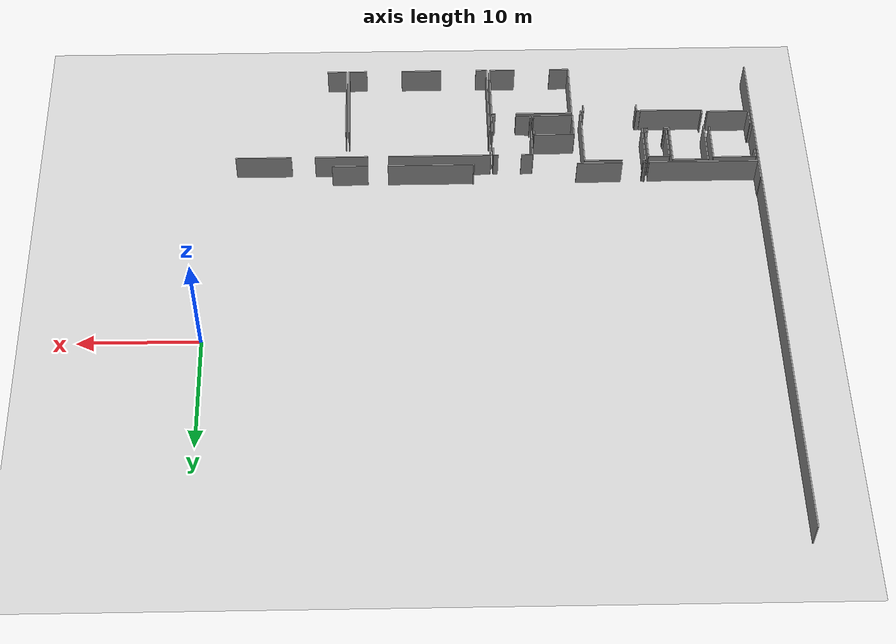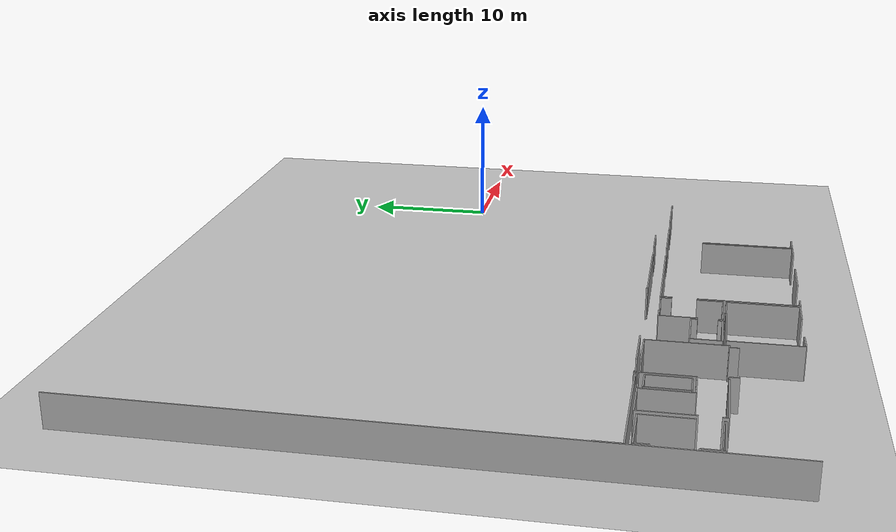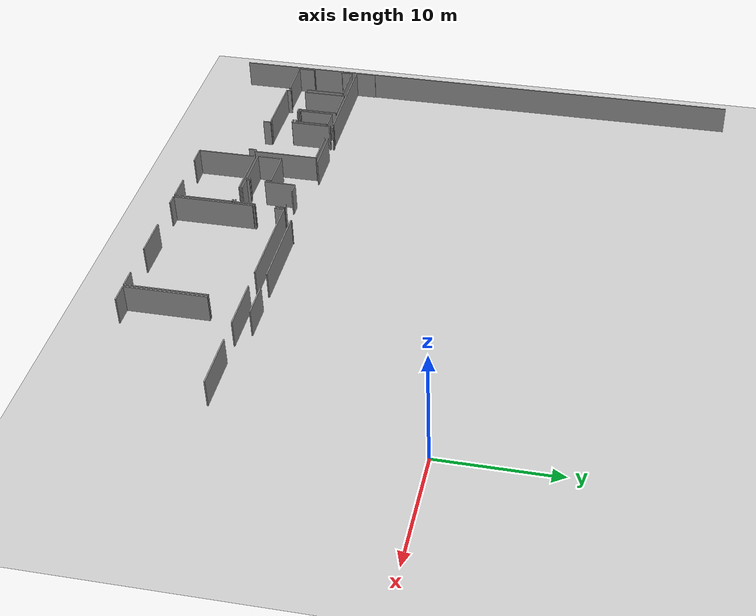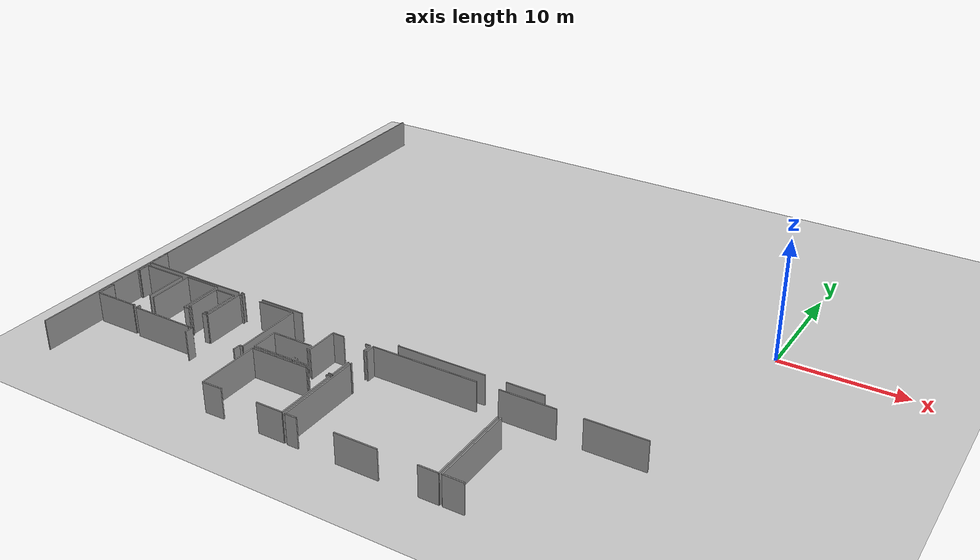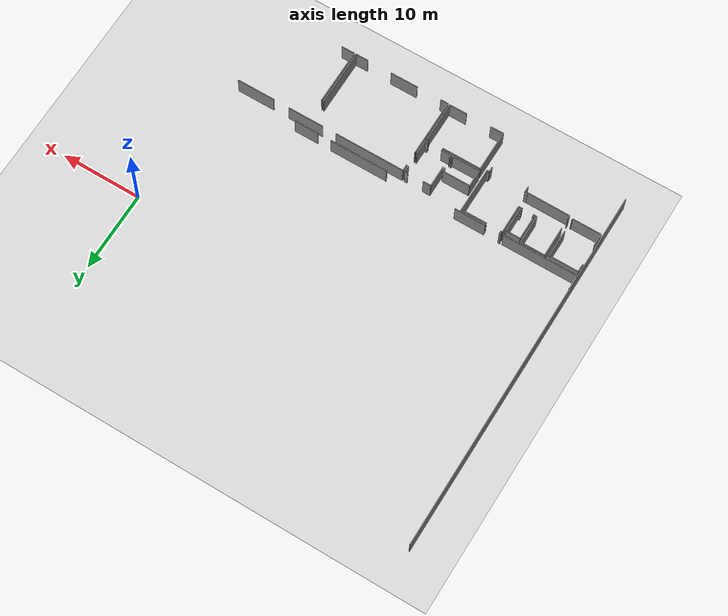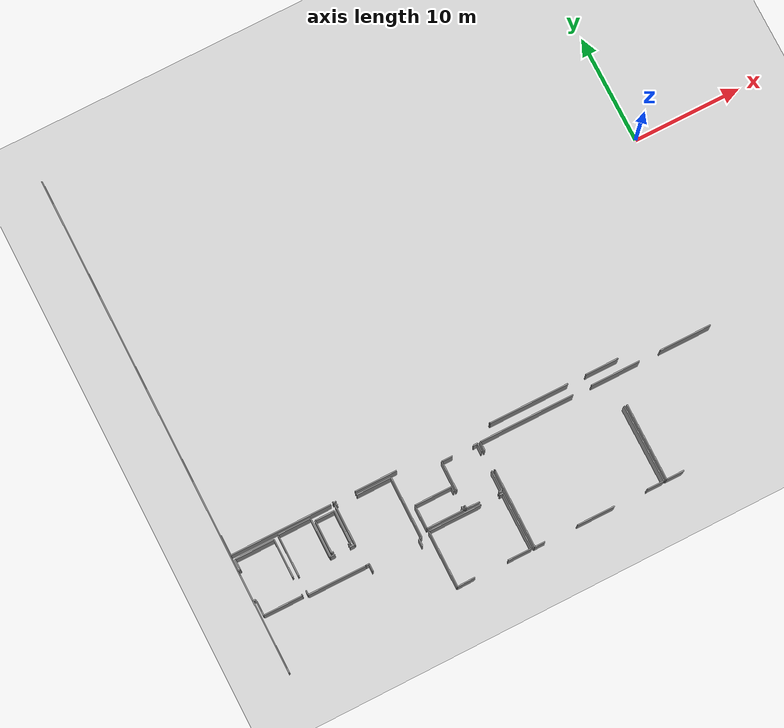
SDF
<sdf version="1.6">
 <world name="default">
  <model name="ground_plane">
   <static>1</static>
   <link name="link">
    <collision name="collision">
     <geometry><plane><normal>0 0 1</normal><size>100 100</size></plane></geometry>
     <surface><friction><ode><mu>100</mu><mu2>50</mu2></ode></friction></surface>
    </collision>
    <visual name="visual">
     <cast_shadows>0</cast_shadows>
     <geometry><plane><normal>0 0 1</normal><size>100 100</size></plane></geometry>
     <material>
      <script><uri>file://media/materials/scripts/gazebo.material</uri><name>Gazebo/Grey</name></script>
     </material>
    </visual>
   </link>
  </model>
  <model name="50045233">
   <static>1</static>
   <link name="Wall_108">
    <collision name="Wall_108_Collision">
     <geometry><box><size>1.83953554773 0.1 2.5</size></box></geometry>
     <pose>0.919767773865 0 1.25 0 0 0</pose>
    </collision>
    <visual name="Wall_108_Visual">
     <pose>0.919767773865 0 1.25 0 0 0</pose>
     <geometry><box><size>1.83953554773 0.1 2.5</size></box></geometry>
     <material>
      <script><uri>file://media/materials/scripts/gazebo.material</uri><name>Gazebo/Grey</name></script>
      <ambient>1 1 1 1</ambient>
     </material>
    </visual>
    <pose>0.0579930839758 -35.56778021 0 0 0 1.57079632679</pose>
   </link>
   <link name="Wall_127">
    <collision name="Wall_127_Collision">
     <geometry><box><size>9.27991145135 0.1 2.5</size></box></geometry>
     <pose>4.63995572567 0 1.25 0 0 0</pose>
    </collision>
    <visual name="Wall_127_Visual">
     <pose>4.63995572567 0 1.25 0 0 0</pose>
     <geometry><box><size>9.27991145135 0.1 2.5</size></box></geometry>
     <material>
      <script><uri>file://media/materials/scripts/gazebo.material</uri><name>Gazebo/Grey</name></script>
      <ambient>1 1 1 1</ambient>
     </material>
    </visual>
    <pose>9.33790171632 -35.5750134831 0 0 0 3.14081319855</pose>
   </link>
   <link name="Wall_128">
    <collision name="Wall_128_Collision">
     <geometry><box><size>0.120681450462 0.1 2.5</size></box></geometry>
     <pose>0.0603407252308 0 1.25 0 0 0</pose>
    </collision>
    <visual name="Wall_128_Visual">
     <pose>0.0603407252308 0 1.25 0 0 0</pose>
     <geometry><box><size>0.120681450462 0.1 2.5</size></box></geometry>
     <material>
      <script><uri>file://media/materials/scripts/gazebo.material</uri><name>Gazebo/Grey</name></script>
      <ambient>1 1 1 1</ambient>
     </material>
    </visual>
    <pose>9.58256400495 -35.5667650138 0 0 0 1.57079632679</pose>
   </link>
   <link name="Wall_131">
    <collision name="Wall_131_Collision">
     <geometry><box><size>3.85698423273 0.1 2.5</size></box></geometry>
     <pose>1.92849211637 0 1.25 0 0 0</pose>
    </collision>
    <visual name="Wall_131_Visual">
     <pose>1.92849211637 0 1.25 0 0 0</pose>
     <geometry><box><size>3.85698423273 0.1 2.5</size></box></geometry>
     <material>
      <script><uri>file://media/materials/scripts/gazebo.material</uri><name>Gazebo/Grey</name></script>
      <ambient>1 1 1 1</ambient>
     </material>
    </visual>
    <pose>15.4658798896 -35.5242536722 0 0 0 3.14159265359</pose>
   </link>
   <link name="Wall_132">
    <collision name="Wall_132_Collision">
     <geometry><box><size>0.262968462094 0.1 2.5</size></box></geometry>
     <pose>0.131484231047 0 1.25 0 0 0</pose>
    </collision>
    <visual name="Wall_132_Visual">
     <pose>0.131484231047 0 1.25 0 0 0</pose>
     <geometry><box><size>0.262968462094 0.1 2.5</size></box></geometry>
     <material>
      <script><uri>file://media/materials/scripts/gazebo.material</uri><name>Gazebo/Grey</name></script>
      <ambient>1 1 1 1</ambient>
     </material>
    </visual>
    <pose>9.84207353828 -35.5242536722 0 0 0 -2.97922064496</pose>
   </link>
   <link name="Wall_133">
    <collision name="Wall_133_Collision">
     <geometry><box><size>0.68411535167 0.1 2.5</size></box></geometry>
     <pose>0.342057675835 0 1.25 0 0 0</pose>
    </collision>
    <visual name="Wall_133_Visual">
     <pose>0.342057675835 0 1.25 0 0 0</pose>
     <geometry><box><size>0.68411535167 0.1 2.5</size></box></geometry>
     <material>
      <script><uri>file://media/materials/scripts/gazebo.material</uri><name>Gazebo/Grey</name></script>
      <ambient>1 1 1 1</ambient>
     </material>
    </visual>
    <pose>9.92557342724 -42.0954918943 0 0 0 1.57079632679</pose>
   </link>
   <link name="Wall_134">
    <collision name="Wall_134_Collision">
     <geometry><box><size>0.306589257955 0.1 2.5</size></box></geometry>
     <pose>0.153294628978 0 1.25 0 0 0</pose>
    </collision>
    <visual name="Wall_134_Visual">
     <pose>0.153294628978 0 1.25 0 0 0</pose>
     <geometry><box><size>0.306589257955 0.1 2.5</size></box></geometry>
     <material>
      <script><uri>file://media/materials/scripts/gazebo.material</uri><name>Gazebo/Grey</name></script>
      <ambient>1 1 1 1</ambient>
     </material>
    </visual>
    <pose>9.92557342724 -41.4113765426 0 0 0 3.14159265359</pose>
   </link>
   <link name="Wall_135">
    <collision name="Wall_135_Collision">
     <geometry><box><size>3.6285650836 0.1 2.5</size></box></geometry>
     <pose>1.8142825418 0 1.25 0 0 0</pose>
    </collision>
    <visual name="Wall_135_Visual">
     <pose>1.8142825418 0 1.25 0 0 0</pose>
     <geometry><box><size>3.6285650836 0.1 2.5</size></box></geometry>
     <material>
      <script><uri>file://media/materials/scripts/gazebo.material</uri><name>Gazebo/Grey</name></script>
      <ambient>1 1 1 1</ambient>
     </material>
    </visual>
    <pose>9.61898416928 -39.442149678 0 0 0 1.57079632679</pose>
   </link>
   <link name="Wall_136">
    <collision name="Wall_136_Collision">
     <geometry><box><size>0.215982995463 0.1 2.5</size></box></geometry>
     <pose>0.107991497732 0 1.25 0 0 0</pose>
    </collision>
    <visual name="Wall_136_Visual">
     <pose>0.107991497732 0 1.25 0 0 0</pose>
     <geometry><box><size>0.215982995463 0.1 2.5</size></box></geometry>
     <material>
      <script><uri>file://media/materials/scripts/gazebo.material</uri><name>Gazebo/Grey</name></script>
      <ambient>1 1 1 1</ambient>
     </material>
    </visual>
    <pose>9.61898416928 -35.8135845944 0 0 0 0.0</pose>
   </link>
   <link name="Wall_137">
    <collision name="Wall_137_Collision">
     <geometry><box><size>3.20408616478 0.1 2.5</size></box></geometry>
     <pose>1.60204308239 0 1.25 0 0 0</pose>
    </collision>
    <visual name="Wall_137_Visual">
     <pose>1.60204308239 0 1.25 0 0 0</pose>
     <geometry><box><size>3.20408616478 0.1 2.5</size></box></geometry>
     <material>
      <script><uri>file://media/materials/scripts/gazebo.material</uri><name>Gazebo/Grey</name></script>
      <ambient>1 1 1 1</ambient>
     </material>
    </visual>
    <pose>11.60267758 -35.8135845944 0 0 0 0.0</pose>
   </link>
   <link name="Wall_138">
    <collision name="Wall_138_Collision">
     <geometry><box><size>5.6311665239 0.1 2.5</size></box></geometry>
     <pose>2.81558326195 0 1.25 0 0 0</pose>
    </collision>
    <visual name="Wall_138_Visual">
     <pose>2.81558326195 0 1.25 0 0 0</pose>
     <geometry><box><size>5.6311665239 0.1 2.5</size></box></geometry>
     <material>
      <script><uri>file://media/materials/scripts/gazebo.material</uri><name>Gazebo/Grey</name></script>
      <ambient>1 1 1 1</ambient>
     </material>
    </visual>
    <pose>14.8067637448 -35.8135845944 0 0 0 -1.57079632679</pose>
   </link>
   <link name="Wall_139">
    <collision name="Wall_139_Collision">
     <geometry><box><size>0.272960883221 0.1 2.5</size></box></geometry>
     <pose>0.13648044161 0 1.25 0 0 0</pose>
    </collision>
    <visual name="Wall_139_Visual">
     <pose>0.13648044161 0 1.25 0 0 0</pose>
     <geometry><box><size>0.272960883221 0.1 2.5</size></box></geometry>
     <material>
      <script><uri>file://media/materials/scripts/gazebo.material</uri><name>Gazebo/Grey</name></script>
      <ambient>1 1 1 1</ambient>
     </material>
    </visual>
    <pose>14.8067637448 -41.4447511183 0 0 0 3.14159265359</pose>
   </link>
   <link name="Wall_140">
    <collision name="Wall_140_Collision">
     <geometry><box><size>0.650830166213 0.1 2.5</size></box></geometry>
     <pose>0.325415083106 0 1.25 0 0 0</pose>
    </collision>
    <visual name="Wall_140_Visual">
     <pose>0.325415083106 0 1.25 0 0 0</pose>
     <geometry><box><size>0.650830166213 0.1 2.5</size></box></geometry>
     <material>
      <script><uri>file://media/materials/scripts/gazebo.material</uri><name>Gazebo/Grey</name></script>
      <ambient>1 1 1 1</ambient>
     </material>
    </visual>
    <pose>14.5338028616 -41.4447511183 0 0 0 -1.587370472</pose>
   </link>
   <link name="Wall_141">
    <collision name="Wall_141_Collision">
     <geometry><box><size>0.447701532312 0.1 2.5</size></box></geometry>
     <pose>0.223850766156 0 1.25 0 0 0</pose>
    </collision>
    <visual name="Wall_141_Visual">
     <pose>0.223850766156 0 1.25 0 0 0</pose>
     <geometry><box><size>0.447701532312 0.1 2.5</size></box></geometry>
     <material>
      <script><uri>file://media/materials/scripts/gazebo.material</uri><name>Gazebo/Grey</name></script>
      <ambient>1 1 1 1</ambient>
     </material>
    </visual>
    <pose>9.58231020589 -39.4302211224 0 0 0 3.14159265359</pose>
   </link>
   <link name="Wall_142">
    <collision name="Wall_142_Collision">
     <geometry><box><size>0.460645284096 0.1 2.5</size></box></geometry>
     <pose>0.230322642048 0 1.25 0 0 0</pose>
    </collision>
    <visual name="Wall_142_Visual">
     <pose>0.230322642048 0 1.25 0 0 0</pose>
     <geometry><box><size>0.460645284096 0.1 2.5</size></box></geometry>
     <material>
      <script><uri>file://media/materials/scripts/gazebo.material</uri><name>Gazebo/Grey</name></script>
      <ambient>1 1 1 1</ambient>
     </material>
    </visual>
    <pose>7.76536277402 -39.4302211224 0 0 0 3.14159265359</pose>
   </link>
   <link name="Wall_143">
    <collision name="Wall_143_Collision">
     <geometry><box><size>3.61359093937 0.1 2.5</size></box></geometry>
     <pose>1.80679546969 0 1.25 0 0 0</pose>
    </collision>
    <visual name="Wall_143_Visual">
     <pose>1.80679546969 0 1.25 0 0 0</pose>
     <geometry><box><size>3.61359093937 0.1 2.5</size></box></geometry>
     <material>
      <script><uri>file://media/materials/scripts/gazebo.material</uri><name>Gazebo/Grey</name></script>
      <ambient>1 1 1 1</ambient>
     </material>
    </visual>
    <pose>7.30471748993 -39.4302211224 0 0 0 1.57079632679</pose>
   </link>
   <link name="Wall_144">
    <collision name="Wall_144_Collision">
     <geometry><box><size>3.01576726627 0.1 2.5</size></box></geometry>
     <pose>1.50788363313 0 1.25 0 0 0</pose>
    </collision>
    <visual name="Wall_144_Visual">
     <pose>1.50788363313 0 1.25 0 0 0</pose>
     <geometry><box><size>3.01576726627 0.1 2.5</size></box></geometry>
     <material>
      <script><uri>file://media/materials/scripts/gazebo.material</uri><name>Gazebo/Grey</name></script>
      <ambient>1 1 1 1</ambient>
     </material>
    </visual>
    <pose>7.30471748993 -35.8166301831 0 0 0 3.14159265359</pose>
   </link>
   <link name="Wall_145">
    <collision name="Wall_145_Collision">
     <geometry><box><size>3.80698581898 0.1 2.5</size></box></geometry>
     <pose>1.90349290949 0 1.25 0 0 0</pose>
    </collision>
    <visual name="Wall_145_Visual">
     <pose>1.90349290949 0 1.25 0 0 0</pose>
     <geometry><box><size>3.80698581898 0.1 2.5</size></box></geometry>
     <material>
      <script><uri>file://media/materials/scripts/gazebo.material</uri><name>Gazebo/Grey</name></script>
      <ambient>1 1 1 1</ambient>
     </material>
    </visual>
    <pose>4.28895022366 -35.8166301831 0 0 0 -1.57079632679</pose>
   </link>
   <link name="Wall_146">
    <collision name="Wall_146_Collision">
     <geometry><box><size>0.396687922337 0.1 2.5</size></box></geometry>
     <pose>0.198343961169 0 1.25 0 0 0</pose>
    </collision>
    <visual name="Wall_146_Visual">
     <pose>0.198343961169 0 1.25 0 0 0</pose>
     <geometry><box><size>0.396687922337 0.1 2.5</size></box></geometry>
     <material>
      <script><uri>file://media/materials/scripts/gazebo.material</uri><name>Gazebo/Grey</name></script>
      <ambient>1 1 1 1</ambient>
     </material>
    </visual>
    <pose>4.28895022366 -41.0035214619 0 0 0 -1.57079632679</pose>
   </link>
   <link name="Wall_147">
    <collision name="Wall_147_Collision">
     <geometry><box><size>5.29345429129 0.1 2.5</size></box></geometry>
     <pose>2.64672714565 0 1.25 0 0 0</pose>
    </collision>
    <visual name="Wall_147_Visual">
     <pose>2.64672714565 0 1.25 0 0 0</pose>
     <geometry><box><size>5.29345429129 0.1 2.5</size></box></geometry>
     <material>
      <script><uri>file://media/materials/scripts/gazebo.material</uri><name>Gazebo/Grey</name></script>
      <ambient>1 1 1 1</ambient>
     </material>
    </visual>
    <pose>4.28895022366 -41.4002093842 0 0 0 -0.00596929116824</pose>
   </link>
   <link name="Wall_148">
    <collision name="Wall_148_Collision">
     <geometry><box><size>0.183623616002 0.1 2.5</size></box></geometry>
     <pose>0.091811808001 0 1.25 0 0 0</pose>
    </collision>
    <visual name="Wall_148_Visual">
     <pose>0.091811808001 0 1.25 0 0 0</pose>
     <geometry><box><size>0.183623616002 0.1 2.5</size></box></geometry>
     <material>
      <script><uri>file://media/materials/scripts/gazebo.material</uri><name>Gazebo/Grey</name></script>
      <ambient>1 1 1 1</ambient>
     </material>
    </visual>
    <pose>7.56422702325 -39.1667777038 0 0 0 0.0</pose>
   </link>
   <link name="Wall_149">
    <collision name="Wall_149_Collision">
     <geometry><box><size>0.2194092827 0.1 2.5</size></box></geometry>
     <pose>0.10970464135 0 1.25 0 0 0</pose>
    </collision>
    <visual name="Wall_149_Visual">
     <pose>0.10970464135 0 1.25 0 0 0</pose>
     <geometry><box><size>0.2194092827 0.1 2.5</size></box></geometry>
     <material>
      <script><uri>file://media/materials/scripts/gazebo.material</uri><name>Gazebo/Grey</name></script>
      <ambient>1 1 1 1</ambient>
     </material>
    </visual>
    <pose>9.12039592653 -39.1667777038 0 0 0 0.0</pose>
   </link>
   <link name="Wall_150">
    <collision name="Wall_150_Collision">
     <geometry><box><size>2.9968592367 0.1 2.5</size></box></geometry>
     <pose>1.49842961835 0 1.25 0 0 0</pose>
    </collision>
    <visual name="Wall_150_Visual">
     <pose>1.49842961835 0 1.25 0 0 0</pose>
     <geometry><box><size>2.9968592367 0.1 2.5</size></box></geometry>
     <material>
      <script><uri>file://media/materials/scripts/gazebo.material</uri><name>Gazebo/Grey</name></script>
      <ambient>1 1 1 1</ambient>
     </material>
    </visual>
    <pose>9.33980520923 -39.1667777038 0 0 0 1.57079632679</pose>
   </link>
   <link name="Wall_151">
    <collision name="Wall_151_Collision">
     <geometry><box><size>1.7701215063 0.1 2.5</size></box></geometry>
     <pose>0.885060753149 0 1.25 0 0 0</pose>
    </collision>
    <visual name="Wall_151_Visual">
     <pose>0.885060753149 0 1.25 0 0 0</pose>
     <geometry><box><size>1.7701215063 0.1 2.5</size></box></geometry>
     <material>
      <script><uri>file://media/materials/scripts/gazebo.material</uri><name>Gazebo/Grey</name></script>
      <ambient>1 1 1 1</ambient>
     </material>
    </visual>
    <pose>9.33980520923 -36.1699184671 0 0 0 3.14159265359</pose>
   </link>
   <link name="Wall_152">
    <collision name="Wall_152_Collision">
     <geometry><box><size>2.99686420445 0.1 2.5</size></box></geometry>
     <pose>1.49843210223 0 1.25 0 0 0</pose>
    </collision>
    <visual name="Wall_152_Visual">
     <pose>1.49843210223 0 1.25 0 0 0</pose>
     <geometry><box><size>2.99686420445 0.1 2.5</size></box></geometry>
     <material>
      <script><uri>file://media/materials/scripts/gazebo.material</uri><name>Gazebo/Grey</name></script>
      <ambient>1 1 1 1</ambient>
     </material>
    </visual>
    <pose>7.56968370293 -36.1699184671 0 0 0 -1.57261712424</pose>
   </link>
   <link name="Wall_153">
    <collision name="Wall_153_Collision">
     <geometry><box><size>3.57704387551 0.1 2.5</size></box></geometry>
     <pose>1.78852193776 0 1.25 0 0 0</pose>
    </collision>
    <visual name="Wall_153_Visual">
     <pose>1.78852193776 0 1.25 0 0 0</pose>
     <geometry><box><size>3.57704387551 0.1 2.5</size></box></geometry>
     <material>
      <script><uri>file://media/materials/scripts/gazebo.material</uri><name>Gazebo/Grey</name></script>
      <ambient>1 1 1 1</ambient>
     </material>
    </visual>
    <pose>3.82208686273 -41.2450112623 0 0 0 3.14159265359</pose>
   </link>
   <link name="Wall_154">
    <collision name="Wall_154_Collision">
     <geometry><box><size>1.45934456394 0.1 2.5</size></box></geometry>
     <pose>0.729672281971 0 1.25 0 0 0</pose>
    </collision>
    <visual name="Wall_154_Visual">
     <pose>0.729672281971 0 1.25 0 0 0</pose>
     <geometry><box><size>1.45934456394 0.1 2.5</size></box></geometry>
     <material>
      <script><uri>file://media/materials/scripts/gazebo.material</uri><name>Gazebo/Grey</name></script>
      <ambient>1 1 1 1</ambient>
     </material>
    </visual>
    <pose>0.245042987215 -41.2450112623 0 0 0 1.57079632679</pose>
   </link>
   <link name="Wall_155">
    <collision name="Wall_155_Collision">
     <geometry><box><size>0.245042987215 0.1 2.5</size></box></geometry>
     <pose>0.122521493607 0 1.25 0 0 0</pose>
    </collision>
    <visual name="Wall_155_Visual">
     <pose>0.122521493607 0 1.25 0 0 0</pose>
     <geometry><box><size>0.245042987215 0.1 2.5</size></box></geometry>
     <material>
      <script><uri>file://media/materials/scripts/gazebo.material</uri><name>Gazebo/Grey</name></script>
      <ambient>1 1 1 1</ambient>
     </material>
    </visual>
    <pose>0.245042987215 -39.7856666984 0 0 0 3.14159265359</pose>
   </link>
   <link name="Wall_156">
    <collision name="Wall_156_Collision">
     <geometry><box><size>0.217632689318 0.1 2.5</size></box></geometry>
     <pose>0.108816344659 0 1.25 0 0 0</pose>
    </collision>
    <visual name="Wall_156_Visual">
     <pose>0.108816344659 0 1.25 0 0 0</pose>
     <geometry><box><size>0.217632689318 0.1 2.5</size></box></geometry>
     <material>
      <script><uri>file://media/materials/scripts/gazebo.material</uri><name>Gazebo/Grey</name></script>
      <ambient>1 1 1 1</ambient>
     </material>
    </visual>
    <pose>0.0 -36.9679895942 0 0 0 0.0</pose>
   </link>
   <link name="Wall_157">
    <collision name="Wall_157_Collision">
     <geometry><box><size>0.935884013832 0.1 2.5</size></box></geometry>
     <pose>0.467942006916 0 1.25 0 0 0</pose>
    </collision>
    <visual name="Wall_157_Visual">
     <pose>0.467942006916 0 1.25 0 0 0</pose>
     <geometry><box><size>0.935884013832 0.1 2.5</size></box></geometry>
     <material>
      <script><uri>file://media/materials/scripts/gazebo.material</uri><name>Gazebo/Grey</name></script>
      <ambient>1 1 1 1</ambient>
     </material>
    </visual>
    <pose>0.217632689318 -36.9679895942 0 0 0 1.57079632679</pose>
   </link>
   <link name="Wall_158">
    <collision name="Wall_158_Collision">
     <geometry><box><size>3.60597696774 0.1 2.5</size></box></geometry>
     <pose>1.80298848387 0 1.25 0 0 0</pose>
    </collision>
    <visual name="Wall_158_Visual">
     <pose>1.80298848387 0 1.25 0 0 0</pose>
     <geometry><box><size>3.60597696774 0.1 2.5</size></box></geometry>
     <material>
      <script><uri>file://media/materials/scripts/gazebo.material</uri><name>Gazebo/Grey</name></script>
      <ambient>1 1 1 1</ambient>
     </material>
    </visual>
    <pose>0.217632689318 -36.0321055804 0 0 0 0.0</pose>
   </link>
   <link name="Wall_159">
    <collision name="Wall_159_Collision">
     <geometry><box><size>3.47920433996 0.1 2.5</size></box></geometry>
     <pose>1.73960216998 0 1.25 0 0 0</pose>
    </collision>
    <visual name="Wall_159_Visual">
     <pose>1.73960216998 0 1.25 0 0 0</pose>
     <geometry><box><size>3.47920433996 0.1 2.5</size></box></geometry>
     <material>
      <script><uri>file://media/materials/scripts/gazebo.material</uri><name>Gazebo/Grey</name></script>
      <ambient>1 1 1 1</ambient>
     </material>
    </visual>
    <pose>3.82360965705 -36.0321055804 0 0 0 -1.57079632679</pose>
   </link>
   <link name="Wall_160">
    <collision name="Wall_160_Collision">
     <geometry><box><size>0.14035913804 0.1 2.5</size></box></geometry>
     <pose>0.0701795690201 0 1.25 0 0 0</pose>
    </collision>
    <visual name="Wall_160_Visual">
     <pose>0.0701795690201 0 1.25 0 0 0</pose>
     <geometry><box><size>0.14035913804 0.1 2.5</size></box></geometry>
     <material>
      <script><uri>file://media/materials/scripts/gazebo.material</uri><name>Gazebo/Grey</name></script>
      <ambient>1 1 1 1</ambient>
     </material>
    </visual>
    <pose>3.82360965705 -41.1046603851 0 0 0 -1.58164581066</pose>
   </link>
   <link name="Wall_172">
    <collision name="Wall_172_Collision">
     <geometry><box><size>0.275879572349 0.1 2.5</size></box></geometry>
     <pose>0.137939786174 0 1.25 0 0 0</pose>
    </collision>
    <visual name="Wall_172_Visual">
     <pose>0.137939786174 0 1.25 0 0 0</pose>
     <geometry><box><size>0.275879572349 0.1 2.5</size></box></geometry>
     <material>
      <script><uri>file://media/materials/scripts/gazebo.material</uri><name>Gazebo/Grey</name></script>
      <ambient>1 1 1 1</ambient>
     </material>
    </visual>
    <pose>19.1721074839 -40.9613908188 0 0 0 1.57079632679</pose>
   </link>
   <link name="Wall_173">
    <collision name="Wall_173_Collision">
     <geometry><box><size>2.72516734875 0.1 2.5</size></box></geometry>
     <pose>1.36258367438 0 1.25 0 0 0</pose>
    </collision>
    <visual name="Wall_173_Visual">
     <pose>1.36258367438 0 1.25 0 0 0</pose>
     <geometry><box><size>2.72516734875 0.1 2.5</size></box></geometry>
     <material>
      <script><uri>file://media/materials/scripts/gazebo.material</uri><name>Gazebo/Grey</name></script>
      <ambient>1 1 1 1</ambient>
     </material>
    </visual>
    <pose>19.1721074839 -39.2836521684 0 0 0 1.57079632679</pose>
   </link>
   <link name="Wall_174">
    <collision name="Wall_174_Collision">
     <geometry><box><size>0.982583039878 0.1 2.5</size></box></geometry>
     <pose>0.491291519939 0 1.25 0 0 0</pose>
    </collision>
    <visual name="Wall_174_Visual">
     <pose>0.491291519939 0 1.25 0 0 0</pose>
     <geometry><box><size>0.982583039878 0.1 2.5</size></box></geometry>
     <material>
      <script><uri>file://media/materials/scripts/gazebo.material</uri><name>Gazebo/Grey</name></script>
      <ambient>1 1 1 1</ambient>
     </material>
    </visual>
    <pose>19.1721074839 -36.5584848196 0 0 0 0.0</pose>
   </link>
   <link name="Wall_175">
    <collision name="Wall_175_Collision">
     <geometry><box><size>0.403032898702 0.1 2.5</size></box></geometry>
     <pose>0.201516449351 0 1.25 0 0 0</pose>
    </collision>
    <visual name="Wall_175_Visual">
     <pose>0.201516449351 0 1.25 0 0 0</pose>
     <geometry><box><size>0.403032898702 0.1 2.5</size></box></geometry>
     <material>
      <script><uri>file://media/materials/scripts/gazebo.material</uri><name>Gazebo/Grey</name></script>
      <ambient>1 1 1 1</ambient>
     </material>
    </visual>
    <pose>22.1121157324 -36.5584848196 0 0 0 0.0</pose>
   </link>
   <link name="Wall_176">
    <collision name="Wall_176_Collision">
     <geometry><box><size>0.79642143333 0.1 2.5</size></box></geometry>
     <pose>0.398210716665 0 1.25 0 0 0</pose>
    </collision>
    <visual name="Wall_176_Visual">
     <pose>0.398210716665 0 1.25 0 0 0</pose>
     <geometry><box><size>0.79642143333 0.1 2.5</size></box></geometry>
     <material>
      <script><uri>file://media/materials/scripts/gazebo.material</uri><name>Gazebo/Grey</name></script>
      <ambient>1 1 1 1</ambient>
     </material>
    </visual>
    <pose>22.5151486311 -36.5584848196 0 0 0 -1.57079632679</pose>
   </link>
   <link name="Wall_177">
    <collision name="Wall_177_Collision">
     <geometry><box><size>1.86148916595 0.1 2.5</size></box></geometry>
     <pose>0.930744582976 0 1.25 0 0 0</pose>
    </collision>
    <visual name="Wall_177_Visual">
     <pose>0.930744582976 0 1.25 0 0 0</pose>
     <geometry><box><size>1.86148916595 0.1 2.5</size></box></geometry>
     <material>
      <script><uri>file://media/materials/scripts/gazebo.material</uri><name>Gazebo/Grey</name></script>
      <ambient>1 1 1 1</ambient>
     </material>
    </visual>
    <pose>22.5151486311 -39.1397481044 0 0 0 -1.57079632679</pose>
   </link>
   <link name="Wall_178">
    <collision name="Wall_178_Collision">
     <geometry><box><size>0.316614320612 0.1 2.5</size></box></geometry>
     <pose>0.158307160306 0 1.25 0 0 0</pose>
    </collision>
    <visual name="Wall_178_Visual">
     <pose>0.158307160306 0 1.25 0 0 0</pose>
     <geometry><box><size>0.316614320612 0.1 2.5</size></box></geometry>
     <material>
      <script><uri>file://media/materials/scripts/gazebo.material</uri><name>Gazebo/Grey</name></script>
      <ambient>1 1 1 1</ambient>
     </material>
    </visual>
    <pose>22.5151486311 -41.0012372704 0 0 0 3.14159265359</pose>
   </link>
   <link name="Wall_179">
    <collision name="Wall_179_Collision">
     <geometry><box><size>1.23651668427 0.1 2.5</size></box></geometry>
     <pose>0.618258342134 0 1.25 0 0 0</pose>
    </collision>
    <visual name="Wall_179_Visual">
     <pose>0.618258342134 0 1.25 0 0 0</pose>
     <geometry><box><size>1.23651668427 0.1 2.5</size></box></geometry>
     <material>
      <script><uri>file://media/materials/scripts/gazebo.material</uri><name>Gazebo/Grey</name></script>
      <ambient>1 1 1 1</ambient>
     </material>
    </visual>
    <pose>20.4079819803 -41.0012372704 0 0 0 3.10936231523</pose>
   </link>
   <link name="Wall_180">
    <collision name="Wall_180_Collision">
     <geometry><box><size>3.43187081628 0.1 2.5</size></box></geometry>
     <pose>1.71593540814 0 1.25 0 0 0</pose>
    </collision>
    <visual name="Wall_180_Visual">
     <pose>1.71593540814 0 1.25 0 0 0</pose>
     <geometry><box><size>3.43187081628 0.1 2.5</size></box></geometry>
     <material>
      <script><uri>file://media/materials/scripts/gazebo.material</uri><name>Gazebo/Grey</name></script>
      <ambient>1 1 1 1</ambient>
     </material>
    </visual>
    <pose>18.9441959329 -40.9802988484 0 0 0 3.14159265359</pose>
   </link>
   <link name="Wall_181">
    <collision name="Wall_181_Collision">
     <geometry><box><size>2.17658069224 0.1 2.5</size></box></geometry>
     <pose>1.08829034612 0 1.25 0 0 0</pose>
    </collision>
    <visual name="Wall_181_Visual">
     <pose>1.08829034612 0 1.25 0 0 0</pose>
     <geometry><box><size>2.17658069224 0.1 2.5</size></box></geometry>
     <material>
      <script><uri>file://media/materials/scripts/gazebo.material</uri><name>Gazebo/Grey</name></script>
      <ambient>1 1 1 1</ambient>
     </material>
    </visual>
    <pose>15.5123251166 -40.9802988484 0 0 0 1.57079632679</pose>
   </link>
   <link name="Wall_182">
    <collision name="Wall_182_Collision">
     <geometry><box><size>3.41727737064 0.1 2.5</size></box></geometry>
     <pose>1.70863868532 0 1.25 0 0 0</pose>
    </collision>
    <visual name="Wall_182_Visual">
     <pose>1.70863868532 0 1.25 0 0 0</pose>
     <geometry><box><size>3.41727737064 0.1 2.5</size></box></geometry>
     <material>
      <script><uri>file://media/materials/scripts/gazebo.material</uri><name>Gazebo/Grey</name></script>
      <ambient>1 1 1 1</ambient>
     </material>
    </visual>
    <pose>15.5123251166 -38.8037181561 0 0 0 0.0</pose>
   </link>
   <link name="Wall_183">
    <collision name="Wall_183_Collision">
     <geometry><box><size>0.457726594968 0.1 2.5</size></box></geometry>
     <pose>0.228863297484 0 1.25 0 0 0</pose>
    </collision>
    <visual name="Wall_183_Visual">
     <pose>0.228863297484 0 1.25 0 0 0</pose>
     <geometry><box><size>0.457726594968 0.1 2.5</size></box></geometry>
     <material>
      <script><uri>file://media/materials/scripts/gazebo.material</uri><name>Gazebo/Grey</name></script>
      <ambient>1 1 1 1</ambient>
     </material>
    </visual>
    <pose>18.9296024872 -38.8037181561 0 0 0 -1.57079632679</pose>
   </link>
   <link name="Wall_184">
    <collision name="Wall_184_Collision">
     <geometry><box><size>0.326711674475 0.1 2.5</size></box></geometry>
     <pose>0.163355837237 0 1.25 0 0 0</pose>
    </collision>
    <visual name="Wall_184_Visual">
     <pose>0.163355837237 0 1.25 0 0 0</pose>
     <geometry><box><size>0.326711674475 0.1 2.5</size></box></geometry>
     <material>
      <script><uri>file://media/materials/scripts/gazebo.material</uri><name>Gazebo/Grey</name></script>
      <ambient>1 1 1 1</ambient>
     </material>
    </visual>
    <pose>18.9296024872 -40.6539132642 0 0 0 -1.52611380104</pose>
   </link>
   <link name="Wall_185">
    <collision name="Wall_185_Collision">
     <geometry><box><size>5.18409948923 0.1 2.5</size></box></geometry>
     <pose>2.59204974461 0 1.25 0 0 0</pose>
    </collision>
    <visual name="Wall_185_Visual">
     <pose>2.59204974461 0 1.25 0 0 0</pose>
     <geometry><box><size>5.18409948923 0.1 2.5</size></box></geometry>
     <material>
      <script><uri>file://media/materials/scripts/gazebo.material</uri><name>Gazebo/Grey</name></script>
      <ambient>1 1 1 1</ambient>
     </material>
    </visual>
    <pose>15.5635925256 -46.4209891818 0 0 0 1.57079632679</pose>
   </link>
   <link name="Wall_186">
    <collision name="Wall_186_Collision">
     <geometry><box><size>4.85822150312 0.1 2.5</size></box></geometry>
     <pose>2.42911075156 0 1.25 0 0 0</pose>
    </collision>
    <visual name="Wall_186_Visual">
     <pose>2.42911075156 0 1.25 0 0 0</pose>
     <geometry><box><size>4.85822150312 0.1 2.5</size></box></geometry>
     <material>
      <script><uri>file://media/materials/scripts/gazebo.material</uri><name>Gazebo/Grey</name></script>
      <ambient>1 1 1 1</ambient>
     </material>
    </visual>
    <pose>15.5635925256 -41.2368896926 0 0 0 0.0</pose>
   </link>
   <link name="Wall_187">
    <collision name="Wall_187_Collision">
     <geometry><box><size>0.317121918721 0.1 2.5</size></box></geometry>
     <pose>0.15856095936 0 1.25 0 0 0</pose>
    </collision>
    <visual name="Wall_187_Visual">
     <pose>0.15856095936 0 1.25 0 0 0</pose>
     <geometry><box><size>0.317121918721 0.1 2.5</size></box></geometry>
     <material>
      <script><uri>file://media/materials/scripts/gazebo.material</uri><name>Gazebo/Grey</name></script>
      <ambient>1 1 1 1</ambient>
     </material>
    </visual>
    <pose>22.1742965007 -41.2368896926 0 0 0 0.0</pose>
   </link>
   <link name="Wall_188">
    <collision name="Wall_188_Collision">
     <geometry><box><size>5.1426033438 0.1 2.5</size></box></geometry>
     <pose>2.5713016719 0 1.25 0 0 0</pose>
    </collision>
    <visual name="Wall_188_Visual">
     <pose>2.5713016719 0 1.25 0 0 0</pose>
     <geometry><box><size>5.1426033438 0.1 2.5</size></box></geometry>
     <material>
      <script><uri>file://media/materials/scripts/gazebo.material</uri><name>Gazebo/Grey</name></script>
      <ambient>1 1 1 1</ambient>
     </material>
    </visual>
    <pose>22.4914184195 -41.2368896926 0 0 0 -1.57079632679</pose>
   </link>
   <link name="Wall_189">
    <collision name="Wall_189_Collision">
     <geometry><box><size>2.2047523873 0.1 2.5</size></box></geometry>
     <pose>1.10237619365 0 1.25 0 0 0</pose>
    </collision>
    <visual name="Wall_189_Visual">
     <pose>1.10237619365 0 1.25 0 0 0</pose>
     <geometry><box><size>2.2047523873 0.1 2.5</size></box></geometry>
     <material>
      <script><uri>file://media/materials/scripts/gazebo.material</uri><name>Gazebo/Grey</name></script>
      <ambient>1 1 1 1</ambient>
     </material>
    </visual>
    <pose>22.4914184195 -46.3794930364 0 0 0 3.14159265359</pose>
   </link>
   <link name="Wall_190">
    <collision name="Wall_190_Collision">
     <geometry><box><size>1.63258226975 0.1 2.5</size></box></geometry>
     <pose>0.816291134877 0 1.25 0 0 0</pose>
    </collision>
    <visual name="Wall_190_Visual">
     <pose>0.816291134877 0 1.25 0 0 0</pose>
     <geometry><box><size>1.63258226975 0.1 2.5</size></box></geometry>
     <material>
      <script><uri>file://media/materials/scripts/gazebo.material</uri><name>Gazebo/Grey</name></script>
      <ambient>1 1 1 1</ambient>
     </material>
    </visual>
    <pose>17.1956473462 -46.3794930364 0 0 0 -3.1161724248</pose>
   </link>
   <link name="Wall_234">
    <collision name="Wall_234_Collision">
     <geometry><box><size>0.124742235335 0.1 2.5</size></box></geometry>
     <pose>0.0623711176676 0 1.25 0 0 0</pose>
    </collision>
    <visual name="Wall_234_Visual">
     <pose>0.0623711176676 0 1.25 0 0 0</pose>
     <geometry><box><size>0.124742235335 0.1 2.5</size></box></geometry>
     <material>
      <script><uri>file://media/materials/scripts/gazebo.material</uri><name>Gazebo/Grey</name></script>
      <ambient>1 1 1 1</ambient>
     </material>
    </visual>
    <pose>22.7646331017 -39.2644903398 0 0 0 1.57079632679</pose>
   </link>
   <link name="Wall_235">
    <collision name="Wall_235_Collision">
     <geometry><box><size>0.825227626027 0.1 2.5</size></box></geometry>
     <pose>0.412613813014 0 1.25 0 0 0</pose>
    </collision>
    <visual name="Wall_235_Visual">
     <pose>0.412613813014 0 1.25 0 0 0</pose>
     <geometry><box><size>0.825227626027 0.1 2.5</size></box></geometry>
     <material>
      <script><uri>file://media/materials/scripts/gazebo.material</uri><name>Gazebo/Grey</name></script>
      <ambient>1 1 1 1</ambient>
     </material>
    </visual>
    <pose>22.7646331017 -37.3741949811 0 0 0 1.57079632679</pose>
   </link>
   <link name="Wall_236">
    <collision name="Wall_236_Collision">
     <geometry><box><size>8.71266774531 0.1 2.5</size></box></geometry>
     <pose>4.35633387266 0 1.25 0 0 0</pose>
    </collision>
    <visual name="Wall_236_Visual">
     <pose>4.35633387266 0 1.25 0 0 0</pose>
     <geometry><box><size>8.71266774531 0.1 2.5</size></box></geometry>
     <material>
      <script><uri>file://media/materials/scripts/gazebo.material</uri><name>Gazebo/Grey</name></script>
      <ambient>1 1 1 1</ambient>
     </material>
    </visual>
    <pose>22.7646331017 -36.5489673551 0 0 0 0.0</pose>
   </link>
   <link name="Wall_237">
    <collision name="Wall_237_Collision">
     <geometry><box><size>4.50214142952 0.1 2.5</size></box></geometry>
     <pose>2.25107071476 0 1.25 0 0 0</pose>
    </collision>
    <visual name="Wall_237_Visual">
     <pose>2.25107071476 0 1.25 0 0 0</pose>
     <geometry><box><size>4.50214142952 0.1 2.5</size></box></geometry>
     <material>
      <script><uri>file://media/materials/scripts/gazebo.material</uri><name>Gazebo/Grey</name></script>
      <ambient>1 1 1 1</ambient>
     </material>
    </visual>
    <pose>33.2304178167 -36.5489673551 0 0 0 0.0</pose>
   </link>
   <link name="Wall_238">
    <collision name="Wall_238_Collision">
     <geometry><box><size>4.75936677136 0.1 2.5</size></box></geometry>
     <pose>2.37968338568 0 1.25 0 0 0</pose>
    </collision>
    <visual name="Wall_238_Visual">
     <pose>2.37968338568 0 1.25 0 0 0</pose>
     <geometry><box><size>4.75936677136 0.1 2.5</size></box></geometry>
     <material>
      <script><uri>file://media/materials/scripts/gazebo.material</uri><name>Gazebo/Grey</name></script>
      <ambient>1 1 1 1</ambient>
     </material>
    </visual>
    <pose>39.7198058437 -36.5489673551 0 0 0 0.0</pose>
   </link>
   <link name="Wall_248">
    <collision name="Wall_248_Collision">
     <geometry><box><size>1.5744424352 0.1 2.5</size></box></geometry>
     <pose>0.787221217601 0 1.25 0 0 0</pose>
    </collision>
    <visual name="Wall_248_Visual">
     <pose>0.787221217601 0 1.25 0 0 0</pose>
     <geometry><box><size>1.5744424352 0.1 2.5</size></box></geometry>
     <material>
      <script><uri>file://media/materials/scripts/gazebo.material</uri><name>Gazebo/Grey</name></script>
      <ambient>1 1 1 1</ambient>
     </material>
    </visual>
    <pose>34.8629802354 -46.4004314584 0 0 0 3.14159265359</pose>
   </link>
   <link name="Wall_249">
    <collision name="Wall_249_Collision">
     <geometry><box><size>3.45027124774 0.1 2.5</size></box></geometry>
     <pose>1.72513562387 0 1.25 0 0 0</pose>
    </collision>
    <visual name="Wall_249_Visual">
     <pose>1.72513562387 0 1.25 0 0 0</pose>
     <geometry><box><size>3.45027124774 0.1 2.5</size></box></geometry>
     <material>
      <script><uri>file://media/materials/scripts/gazebo.material</uri><name>Gazebo/Grey</name></script>
      <ambient>1 1 1 1</ambient>
     </material>
    </visual>
    <pose>30.2187113353 -46.4004314584 0 0 0 3.14159265359</pose>
   </link>
   <link name="Wall_250">
    <collision name="Wall_250_Collision">
     <geometry><box><size>0.952634751436 0.1 2.5</size></box></geometry>
     <pose>0.476317375718 0 1.25 0 0 0</pose>
    </collision>
    <visual name="Wall_250_Visual">
     <pose>0.476317375718 0 1.25 0 0 0</pose>
     <geometry><box><size>0.952634751436 0.1 2.5</size></box></geometry>
     <material>
      <script><uri>file://media/materials/scripts/gazebo.material</uri><name>Gazebo/Grey</name></script>
      <ambient>1 1 1 1</ambient>
     </material>
    </visual>
    <pose>23.7085117858 -46.4004314584 0 0 0 3.14159265359</pose>
   </link>
   <link name="Wall_251">
    <collision name="Wall_251_Collision">
     <geometry><box><size>7.06678087624 0.1 2.5</size></box></geometry>
     <pose>3.53339043812 0 1.25 0 0 0</pose>
    </collision>
    <visual name="Wall_251_Visual">
     <pose>3.53339043812 0 1.25 0 0 0</pose>
     <geometry><box><size>7.06678087624 0.1 2.5</size></box></geometry>
     <material>
      <script><uri>file://media/materials/scripts/gazebo.material</uri><name>Gazebo/Grey</name></script>
      <ambient>1 1 1 1</ambient>
     </material>
    </visual>
    <pose>22.7558770344 -46.4004314584 0 0 0 1.57079632679</pose>
   </link>
   <link name="Wall_252">
    <collision name="Wall_252_Collision">
     <geometry><box><size>7.06679620771 0.1 2.5</size></box></geometry>
     <pose>3.53339810386 0 1.25 0 0 0</pose>
    </collision>
    <visual name="Wall_252_Visual">
     <pose>3.53339810386 0 1.25 0 0 0</pose>
     <geometry><box><size>7.06679620771 0.1 2.5</size></box></geometry>
     <material>
      <script><uri>file://media/materials/scripts/gazebo.material</uri><name>Gazebo/Grey</name></script>
      <ambient>1 1 1 1</ambient>
     </material>
    </visual>
    <pose>34.8482598902 -39.3336505822 0 0 0 -1.56871329576</pose>
   </link>
   <link name="Wall_254">
    <collision name="Wall_254_Collision">
     <geometry><box><size>1.6404301894 0.1 2.5</size></box></geometry>
     <pose>0.820215094699 0 1.25 0 0 0</pose>
    </collision>
    <visual name="Wall_254_Visual">
     <pose>0.820215094699 0 1.25 0 0 0</pose>
     <geometry><box><size>1.6404301894 0.1 2.5</size></box></geometry>
     <material>
      <script><uri>file://media/materials/scripts/gazebo.material</uri><name>Gazebo/Grey</name></script>
      <ambient>1 1 1 1</ambient>
     </material>
    </visual>
    <pose>36.7394435456 -46.3877415057 0 0 0 3.14159265359</pose>
   </link>
   <link name="Wall_255">
    <collision name="Wall_255_Collision">
     <geometry><box><size>7.04647695187 0.1 2.5</size></box></geometry>
     <pose>3.52323847594 0 1.25 0 0 0</pose>
    </collision>
    <visual name="Wall_255_Visual">
     <pose>3.52323847594 0 1.25 0 0 0</pose>
     <geometry><box><size>7.04647695187 0.1 2.5</size></box></geometry>
     <material>
      <script><uri>file://media/materials/scripts/gazebo.material</uri><name>Gazebo/Grey</name></script>
      <ambient>1 1 1 1</ambient>
     </material>
    </visual>
    <pose>35.0990133562 -46.3877415057 0 0 0 1.57079632679</pose>
   </link>
   <link name="Wall_360">
    <collision name="Wall_360_Collision">
     <geometry><box><size>3.0396243774 0.1 2.5</size></box></geometry>
     <pose>1.5198121887 0 1.25 0 0 0</pose>
    </collision>
    <visual name="Wall_360_Visual">
     <pose>1.5198121887 0 1.25 0 0 0</pose>
     <geometry><box><size>3.0396243774 0.1 2.5</size></box></geometry>
     <material>
      <script><uri>file://media/materials/scripts/gazebo.material</uri><name>Gazebo/Grey</name></script>
      <ambient>1 1 1 1</ambient>
     </material>
    </visual>
    <pose>36.2633165191 -35.5308524476 0 0 0 3.14159265359</pose>
   </link>
   <link name="Wall_361">
    <collision name="Wall_361_Collision">
     <geometry><box><size>7.28289077123 0.1 2.5</size></box></geometry>
     <pose>3.64144538562 0 1.25 0 0 0</pose>
    </collision>
    <visual name="Wall_361_Visual">
     <pose>3.64144538562 0 1.25 0 0 0</pose>
     <geometry><box><size>7.28289077123 0.1 2.5</size></box></geometry>
     <material>
      <script><uri>file://media/materials/scripts/gazebo.material</uri><name>Gazebo/Grey</name></script>
      <ambient>1 1 1 1</ambient>
     </material>
    </visual>
    <pose>31.5252688684 -35.5308524476 0 0 0 3.14159265359</pose>
   </link>
   <link name="Wall_362">
    <collision name="Wall_362_Collision">
     <geometry><box><size>0.104565210495 0.1 2.5</size></box></geometry>
     <pose>0.0522826052473 0 1.25 0 0 0</pose>
    </collision>
    <visual name="Wall_362_Visual">
     <pose>0.0522826052473 0 1.25 0 0 0</pose>
     <geometry><box><size>0.104565210495 0.1 2.5</size></box></geometry>
     <material>
      <script><uri>file://media/materials/scripts/gazebo.material</uri><name>Gazebo/Grey</name></script>
      <ambient>1 1 1 1</ambient>
     </material>
    </visual>
    <pose>24.2423780971 -35.5308524476 0 0 0 1.57079632679</pose>
   </link>
   <link name="Wall_406">
    <collision name="Wall_406_Collision">
     <geometry><box><size>46.4209891818 0.1 2.5</size></box></geometry>
     <pose>23.2104945909 0 1.25 0 0 0</pose>
    </collision>
    <visual name="Wall_406_Visual">
     <pose>23.2104945909 0 1.25 0 0 0</pose>
     <geometry><box><size>46.4209891818 0.1 2.5</size></box></geometry>
     <material>
      <script><uri>file://media/materials/scripts/gazebo.material</uri><name>Gazebo/Grey</name></script>
      <ambient>1 1 1 1</ambient>
     </material>
    </visual>
    <pose>0.0 -46.4209891818 0 0 0 1.57079632679</pose>
   </link>
   <pose>-46.75 19.2209891818 0 0 0 0</pose>
  </model>
 </world>
</sdf>
